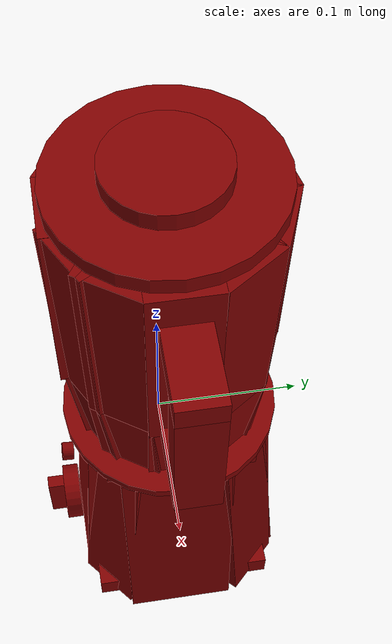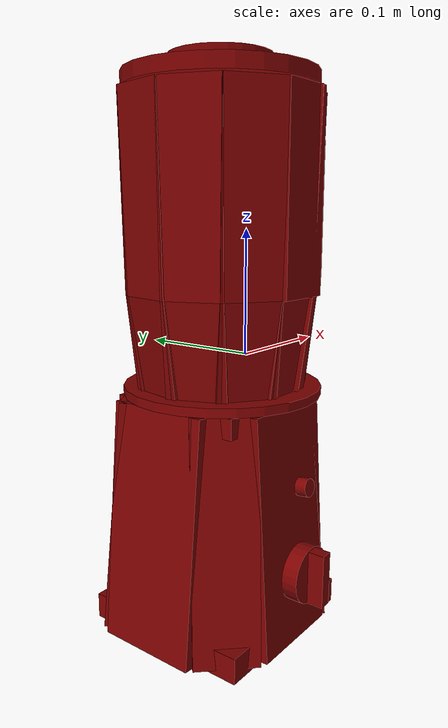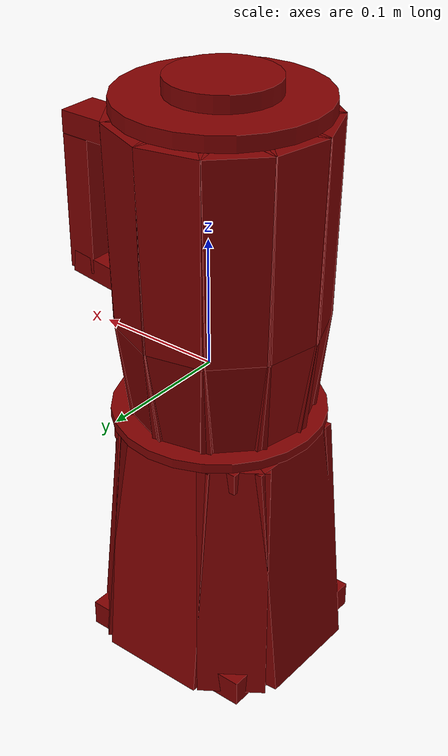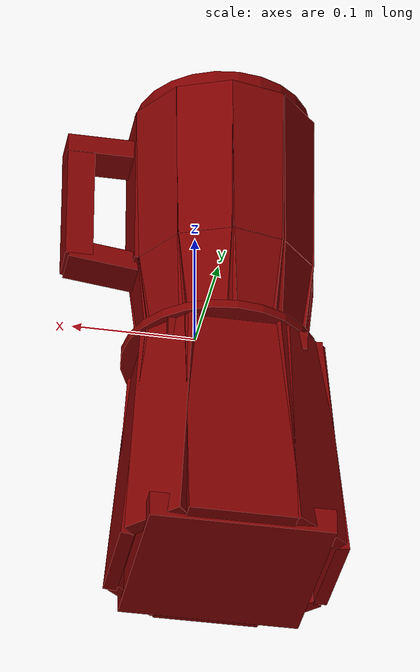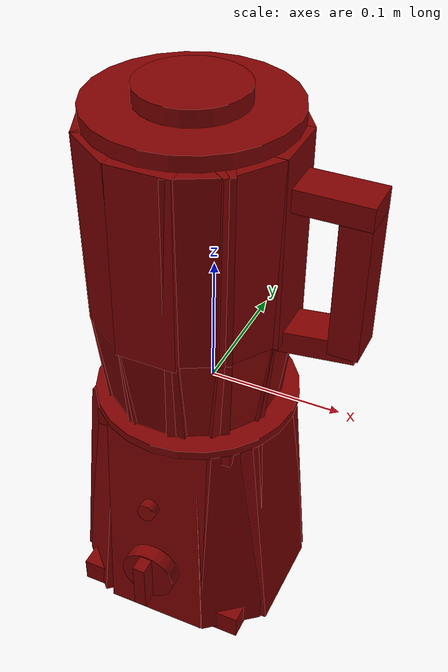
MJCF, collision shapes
<?xml version='1.0' encoding='UTF-8'?>
<mujoco model="model">
  <option timestep="0.002" gravity="0.0 0.0 -9.81"/>
  <compiler angle="radian"/>
  <asset>
    <mesh file="visuals/Blade001.obj" name="Blade001_vis"/>
    <mesh file="visuals/Body001.obj" name="Body001_vis"/>
    <mesh file="visuals/Button001.obj" name="Button001_vis"/>
    <mesh file="visuals/Jug001.obj" name="Jug001_vis"/>
    <mesh file="visuals/Jug001_Clear.obj" name="Jug001_Clear_vis"/>
    <mesh file="visuals/Knob001.obj" name="Knob001_vis"/>
    <mesh file="visuals/Lid001.obj" name="Lid001_vis"/>
    <texture file="visuals/T_BC001.png" name="Body001_material" type="2d"/>
    <material name="Body001_material" rgba="1 1 1 1.0" texture="Body001_material" shininess="0.4472135901451111" specular="0.3103448502657381"/>
    <texture file="visuals/T_BC001.png" name="Button001_material" type="2d"/>
    <material name="Button001_material" rgba="1 1 1 1.0" texture="Button001_material" shininess="0.4472135901451111" specular="0.3103448502657381"/>
    <material name="Jug001_Clear_material" rgba="0.5881999731063843 0.5881999731063843 0.5881999731063843 0.800000011920929" shininess="0.10000002384185791" specular="0.33333333333333337"/>
    <texture file="visuals/T_BC001.png" name="Jug001_material" type="2d"/>
    <material name="Jug001_material" rgba="1 1 1 1.0" texture="Jug001_material" shininess="0.4472135901451111" specular="0.3103448502657381"/>
    <texture file="visuals/T_BC001.png" name="Blade001_material" type="2d"/>
    <material name="Blade001_material" rgba="1 1 1 1.0" texture="Blade001_material" shininess="0.4472135901451111" specular="0.3103448502657381"/>
    <texture file="visuals/T_BC001.png" name="Lid001_material" type="2d"/>
    <material name="Lid001_material" rgba="1 1 1 1.0" texture="Lid001_material" shininess="0.4472135901451111" specular="0.3103448502657381"/>
    <texture file="visuals/T_BC001.png" name="Knob001_material" type="2d"/>
    <material name="Knob001_material" rgba="1 1 1 1.0" texture="Knob001_material" shininess="0.4472135901451111" specular="0.3103448502657381"/>
  </asset>
  <default>
    <default class="visual">
      <geom conaffinity="0" contype="0" group="1" type="mesh"/>
    </default>
    <default class="collision">
      <geom group="0" rgba="0.5 0 0 0.5"/>
    </default>
    <default class="spawn">
      <geom group="0" rgba="1 1 1 0.5" contype="0" conaffinity="0"/>
      <site group="0" rgba="1 1 1 0.5"/>
    </default>
    <default class="region">
      <geom group="1" conaffinity="0" contype="0" rgba="0 1 0 0"/>
    </default>
  </default>
  <worldbody>
    <body>
      <body name="object">
        <geom mesh="Body001_vis" type="mesh" solimp="0.998 0.998 0.001" solref="0.001 1" friction="0.95 0.3 0.1" class="visual" material="Body001_material"/>
        <geom class="collision" type="box" pos="-0.095156 0.014766 -0.124973" size="0.0054743182845413685 0.04164137691259384 0.09551781415939331" quat="0.9989255666732788 0.0 0.046342987567186356 0.0" density="1000.0"/>
        <geom class="collision" type="box" pos="-0.020705 -0.056000 -0.126236" size="0.0054743182845413685 0.04164137691259384 0.09551780670881271" quat="0.706755518913269 -0.02228604629635811 0.02228604629635811 0.7067554593086243" density="1000.0"/>
        <geom class="collision" type="box" pos="0.051760 0.007133 -0.124973" size="0.005474319215863943 0.04164137691259384 0.0955178365111351" quat="7.541678570532895e-08 -0.04634277522563934 3.4987823749332847e-09 0.9989255666732788" density="1000.0"/>
        <geom class="collision" type="box" pos="-0.019563 0.080196 -0.126285" size="0.0054743182845413685 0.04164137691259384 0.09551781415939331" quat="0.7062275409698486 0.03525201231241226 0.035252008587121964 -0.7062274813652039" density="1000.0"/>
        <geom class="collision" type="box" pos="-0.076308 0.067571 -0.124973" size="0.005474318750202656 0.025623897090554237 0.09551780670881271" quat="0.8880482316017151 0.021220438182353973 0.0411989763379097 -0.45740869641304016" density="1000.0"/>
        <geom class="collision" type="box" pos="0.036333 0.063754 -0.124973" size="0.005474317818880081 0.025623897090554237 0.09551780670881271" quat="0.37871524691581726 0.04288320243358612 0.017569633200764656 -0.9243522882461548" density="1000.0"/>
        <geom class="collision" type="box" pos="0.033178 -0.041344 -0.124973" size="0.0054743182845413685 0.025623897090554237 0.09551780670881271" quat="0.4256477653980255 -0.04192516580224037 0.01974695920944214 0.9037014842033386" density="1000.0"/>
        <geom class="collision" type="box" pos="-0.077425 -0.038557 -0.124973" size="0.0054743182845413685 0.025623897090554237 0.09551780670881271" quat="0.9243523478507996 -0.017569629475474358 0.04288322851061821 0.37871503829956055" density="1000.0"/>
        <geom class="collision" type="box" pos="-0.021673 0.012043 -0.213441" size="0.07172335684299469 0.07172335684299469 0.010338500142097473" quat="1.0 0.0 0.0 0.0" density="1000.0"/>
        <geom class="collision" type="box" pos="-0.021673 0.012043 -0.037390" size="0.055709417909383774 0.055709417909383774 0.008030186407268047" quat="1.0 0.0 0.0 0.0" density="1000.0"/>
        <body name="Button001">
          <joint axis="1.5750340873743372e-18 0.9929066896438599 -0.11889630556106567" pos="-0.021259 -0.071103 -0.090877" limited="true" name="Button001_joint" range="0.0 0.002" type="slide" damping="1" frictionloss="1" armature=".01" stiffness="0.05" springref="-0.1"/>
          <geom mesh="Button001_vis" type="mesh" solimp="0.998 0.998 0.001" solref="0.001 1" friction="0.95 0.3 0.1" class="visual" material="Button001_material"/>
          <geom class="collision" type="cylinder" pos="-0.021259 -0.071363 -0.090850" size="0.007087751291692257 0.004477208014577627" quat="0.7420973181724548 0.6702921390533447 0.0 0.0" density="1000.0"/>
        </body>
        <body name="Jug001_Clear">
          <geom class="region" name="reg_int" type="box" pos="-0.020493499999999998 0.01063 0.092512" size="0.0555865 0.055132 0.107024"/>
          <joint axis="0.0 0.0 1.0" pos="0.000250 0.003909 0.000000" limited="true" name="Jug001_Clear_joint" range="0.0 0.1" type="slide" damping="1" frictionloss="1" armature=".01" stiffness="0.05"/>
          <geom mesh="Jug001_Clear_vis" type="mesh" solimp="0.998 0.998 0.001" solref="0.001 1" friction="0.95 0.3 0.1" class="visual" material="Jug001_Clear_material"/>
          <geom class="collision" type="box" pos="-0.020869 -0.059125 0.125951" size="0.023175865411758423 0.007076061796396971 0.07389082759618759" quat="1.0 0.0 0.0 0.0" density="1000.0"/>
          <geom class="collision" type="box" pos="-0.020869 -0.052959 0.016706" size="0.023175908252596855 0.005516691133379936 0.03700769692659378" quat="0.9981673955917358 0.06051306799054146 0.0 0.0" density="1000.0"/>
          <geom class="collision" type="box" pos="-0.060036 -0.046932 0.125951" size="0.023175911977887154 0.005516692530363798 0.07379065454006195" quat="0.9549254775047302 0.010099019855260849 -0.003137363586574793 -0.2966572344303131" density="1000.0"/>
          <geom class="collision" type="box" pos="-0.056542 -0.041851 0.016706" size="0.023175908252596855 0.005516690202057362 0.03700769692659378" quat="0.953228771686554 0.05778857693076134 -0.017952607944607735 -0.29613015055656433" density="1000.0"/>
          <geom class="collision" type="box" pos="-0.079161 -0.013703 0.016706" size="0.023175908252596855 0.005516691133379936 0.03700769692659378" quat="0.8282976746559143 0.05021476000547409 -0.03376825898885727 -0.5570108890533447" density="1000.0"/>
          <geom class="collision" type="box" pos="-0.084872 -0.016029 0.125951" size="0.023175911977887154 0.005516692530363798 0.07379065454006195" quat="0.8297720551490784 0.008775432594120502 -0.0059012724086642265 -0.558002233505249" density="1000.0"/>
          <geom class="collision" type="box" pos="-0.088716 0.023086 0.125951" size="0.023175911977887154 0.0055166929960250854 0.07379065454006195" quat="0.6369348168373108 0.006736038718372583 -0.008152233436703682 -0.7708451151847839" density="1000.0"/>
          <geom class="collision" type="box" pos="-0.082660 0.021923 0.016706" size="0.023175908252596855 0.005516691133379936 0.03700769692659378" quat="0.6358030438423157 0.03854496777057648 -0.04664872959256172 -0.7694755792617798" density="1000.0"/>
          <geom class="collision" type="box" pos="-0.065918 0.053966 0.016706" size="0.023175908252596855 0.005516690202057362 0.03700769692659378" quat="0.38814669847488403 0.023531027138233185 -0.05575042590498924 -0.9196087718009949" density="1000.0"/>
          <geom class="collision" type="box" pos="-0.070335 0.058267 0.125951" size="0.023175911977887154 0.005516692530363798 0.07379065454006195" quat="0.3888375759124756 0.004112234804779291 -0.009742825292050838 -0.9212456345558167" density="1000.0"/>
          <geom class="collision" type="box" pos="-0.035641 0.077541 0.125951" size="0.023175911977887154 0.005516692530363798 0.07379065454006195" quat="0.10804449766874313 0.0011426502605900168 -0.010513239540159702 -0.9940897822380066" density="1000.0"/>
          <geom class="collision" type="box" pos="-0.034316 0.071519 0.016706" size="0.023175908252596855 0.005516691133379936 0.03700769692659378" quat="0.1078525260090828 0.006538457237184048 -0.06015867739915848 -0.9923235177993774" density="1000.0"/>
          <geom class="collision" type="box" pos="0.002263 0.068594 0.016706" size="0.023175908252596855 0.005516691133379936 0.03700769692659378" quat="0.18596415221691132 0.011273913085460663 0.059453509747982025 0.9806913733482361" density="1000.0"/>
          <geom class="collision" type="box" pos="0.004520 0.074332 0.125951" size="0.023175911977887154 0.005516692530363798 0.07379065454006195" quat="0.1862950325012207 0.0019702031277120113 0.010389962233603 0.9824369549751282" density="1000.0"/>
          <geom class="collision" type="box" pos="0.036428 0.048760 0.125951" size="0.023175911977887154 0.0055166929960250854 0.07379065454006195" quat="0.46849510073661804 0.00495466822758317 0.009342609904706478 0.8834028244018555" density="1000.0"/>
          <geom class="collision" type="box" pos="0.031324 0.045301 0.016706" size="0.023175908252596855 0.005516690202057362 0.03700769692659378" quat="0.4676626920700073 0.028351616114377975 0.053460318595170975 0.8818331956863403" density="1000.0"/>
          <geom class="collision" type="box" pos="0.042141 0.009656 0.016706" size="0.023175908252596855 0.005516690202057362 0.03700769692659378" quat="0.7075697779655457 0.042895764112472534 0.042682234197854996 0.7040477395057678" density="1000.0"/>
          <geom class="collision" type="box" pos="0.048307 0.009625 0.125951" size="0.007191615644842386 0.023210931569337845 0.07389082759618759" quat="1.0 0.0 0.0 0.0" density="1000.0"/>
          <geom class="collision" type="box" pos="0.036698 -0.028336 0.125951" size="0.023175911977887154 0.0055166929960250854 0.07379065454006195" quat="0.8814740777015686 0.00932222232222557 0.004992944188416004 0.4721139371395111" density="1000.0"/>
          <geom class="collision" type="box" pos="0.031566 -0.024919 0.016706" size="0.023175908252596855 0.005516690202057362 0.03700769692659378" quat="0.87990802526474 0.05334360897541046 0.02857060730457306 0.4712749421596527" density="1000.0"/>
          <geom class="collision" type="box" pos="0.009056 -0.045416 0.016706" size="0.023175908252596855 0.005516691133379936 0.03700769692659378" quat="0.9677349925041199 0.058668024837970734 0.014828402549028397 0.2445959448814392" density="1000.0"/>
          <geom class="collision" type="box" pos="0.011986 -0.050842 0.125951" size="0.023175911977887154 0.005516692530363798 0.07379065454006195" quat="0.9694575071334839 0.010252690874040127 0.0025913785211741924 0.24503132700920105" density="1000.0"/>
          <geom class="collision" type="box" pos="0.081596 0.010013 0.166829" size="0.028919128701090813 0.015560509636998177 0.008479981683194637" quat="1.0 0.0 0.0 0.0" density="1000.0"/>
          <geom class="collision" type="box" pos="0.099168 0.010013 0.106291" size="0.01119949109852314 0.015560513362288475 0.0517972931265831" quat="1.0 0.0 0.0 0.0" density="1000.0"/>
          <geom class="collision" type="box" pos="0.077715 0.010013 0.056144" size="0.02946845255792141 0.015560523606836796 0.00854925811290741" quat="0.9980339407920837 0.0 -0.06267547607421875 0.0" density="1000.0"/>
          <body name="Jug001">
            <geom mesh="Jug001_vis" type="mesh" solimp="0.998 0.998 0.001" solref="0.001 1" friction="0.95 0.3 0.1" class="visual" material="Jug001_material"/>
            <geom class="collision" type="cylinder" pos="-0.018261 0.010584 -0.019076" size="0.013563878834247589 0.0030004368163645267" quat="0.70710688829422 0.0 0.0 -0.7071066498756409" density="1000.0"/>
            <geom class="collision" type="cylinder" pos="-0.017927 0.010090 -0.025362" size="0.07933948934078217 0.0035974886268377304" quat="1.0 0.0 0.0 0.0" density="1000.0"/>
            <body name="Blade001">
              <joint axis="0.0 0.0 1.0" pos="-0.018124 0.010421 -0.001770" limited="false" name="Blade001_joint" range="0 360" type="hinge" damping="1" frictionloss="1" armature=".01" stiffness="0.05"/>
              <geom mesh="Blade001_vis" type="mesh" solimp="0.998 0.998 0.001" solref="0.001 1" friction="0.95 0.3 0.1" class="visual" material="Blade001_material"/>
              <geom class="collision" type="box" pos="0.002046 0.016695 0.008172" size="0.0015862119616940618 0.018787633627653122 0.008514349348843098" quat="0.22424311935901642 0.4206318259239197 -0.4267450273036957 0.7685522437095642" density="1000.0"/>
              <geom class="collision" type="box" pos="-0.041084 0.002261 0.005073" size="0.0014495250070467591 0.018787631765007973 0.00851509440690279" quat="0.46829313039779663 0.6533452272415161 -0.34451261162757874 0.48492538928985596" density="1000.0"/>
              <geom class="collision" type="box" pos="-0.012462 -0.010414 -0.003410" size="0.0014507644809782505 0.018769260495901108 0.00669638067483902" quat="0.3194257915019989 -0.6354911923408508 -0.12435971200466156 -0.6918473839759827" density="1000.0"/>
              <geom class="collision" type="box" pos="-0.025223 0.032467 -0.007991" size="0.001831724657677114 0.01876925863325596 0.007409302052110434" quat="0.037183113396167755 0.6721182465553284 0.3039575219154358 0.67415452003479" density="1000.0"/>
              <geom class="collision" type="cylinder" pos="-0.018124 0.010421 -0.006374" size="0.010318148881196976 0.008342823013663292" quat="1.0 0.0 0.0 0.0" density="1000.0"/>
            </body>
          </body>
          <body name="Lid001">
            <joint axis="0.0 0.0 1.0" pos="-0.020828 0.010011 0.213509" limited="true" name="Lid001_joint" range="0.0 0.1" type="slide" damping="1" frictionloss="1" armature=".01" stiffness="0.05"/>
            <geom mesh="Lid001_vis" type="mesh" solimp="0.998 0.998 0.001" solref="0.001 1" friction="0.95 0.3 0.1" class="visual" material="Lid001_material"/>
            <geom class="collision" type="cylinder" pos="-0.020828 0.010011 0.207571" size="0.07391905039548874 0.005566863343119621" quat="1.0 0.0 0.0 0.0" density="1000.0"/>
            <geom class="collision" type="cylinder" pos="-0.020828 0.010011 0.218779" size="0.039618849754333496 0.006499830633401871" quat="1.0 0.0 0.0 0.0" density="1000.0"/>
          </body>
        </body>
        <body name="Knob001">
          <joint axis="0.0 1.0 0.0" pos="-0.020828 -0.080414 -0.161120" limited="true" name="Knob001_joint" range="0.0 4.625122517784973" type="hinge" damping="0.05" armature="0.001"/>
          <geom mesh="Knob001_vis" type="mesh" solimp="0.998 0.998 0.001" solref="0.001 1" friction="0.95 0.3 0.1" class="visual" material="Knob001_material"/>
          <geom class="collision" type="cylinder" pos="-0.020828 -0.072878 -0.161120" size="0.02244795672595501 0.006288353819400072" quat="0.7071068286895752 0.7071067690849304 0.0 0.0" density="1000.0"/>
          <geom class="collision" type="box" pos="-0.021075 -0.084111 -0.161322" size="0.004999999888241291 0.008138016797602177 0.02128095179796219" quat="1.0 0.0 0.0 0.0" density="1000.0"/>
        </body>
        <geom class="region" name="reg_main" type="box" pos="0.0002499999999999933 0.003908999999999996 0.0" size="0.109951 0.088548 0.225376"/>
      </body>
    </body>
  </worldbody>
  <actuator>
    <motor name="Button001_joint_actuator" joint="Button001_joint" gear="0.1"/>
    <motor name="Jug001_Clear_joint_actuator" joint="Jug001_Clear_joint" gear="100"/>
    <motor name="Knob001_joint_actuator" joint="Knob001_joint" gear="10"/>
    <motor name="Lid001_joint_actuator" joint="Lid001_joint" gear="10"/>
    <motor name="Blade001_joint_actuator" joint="Blade001_joint" gear="10"/>
  </actuator>
</mujoco>
